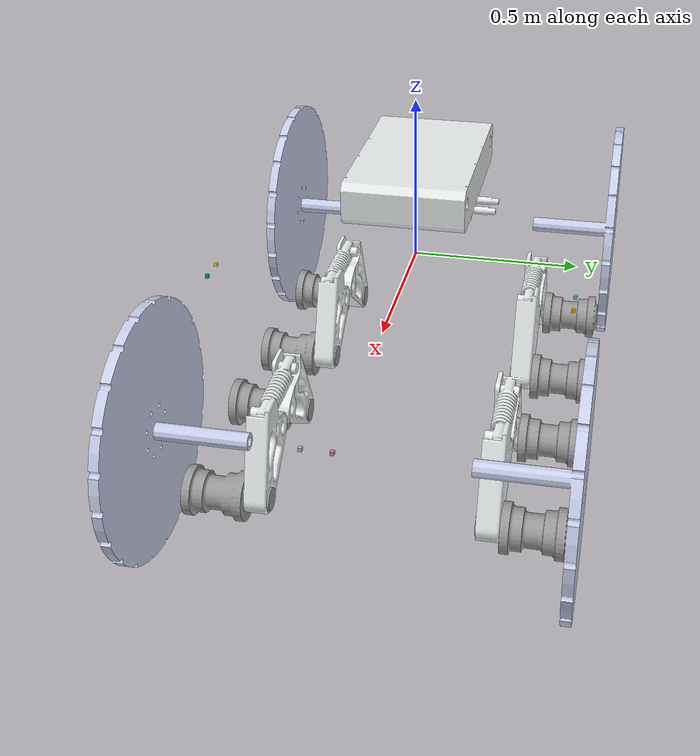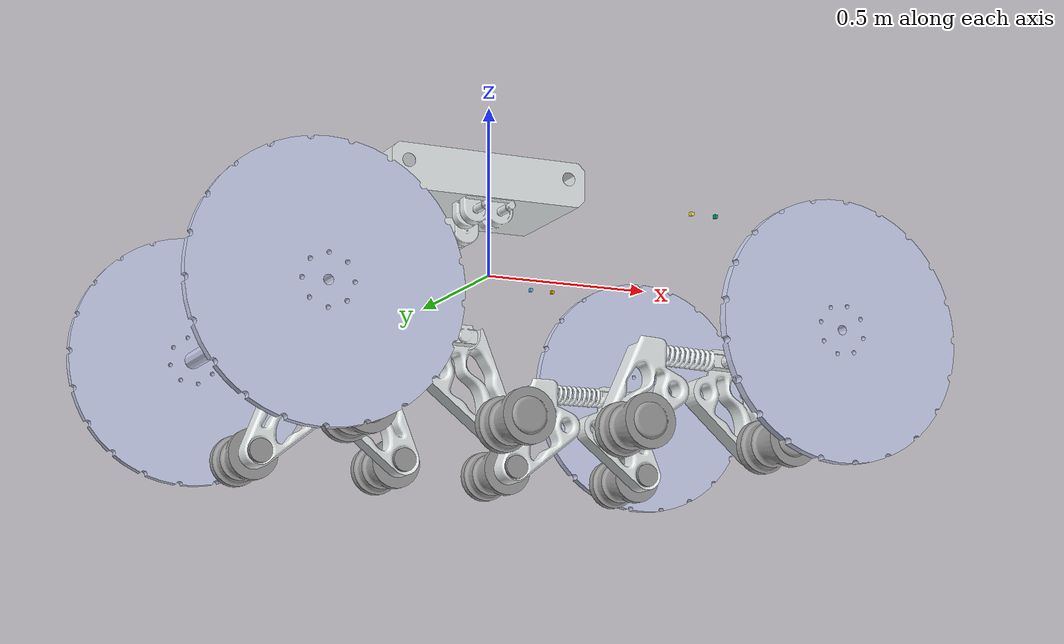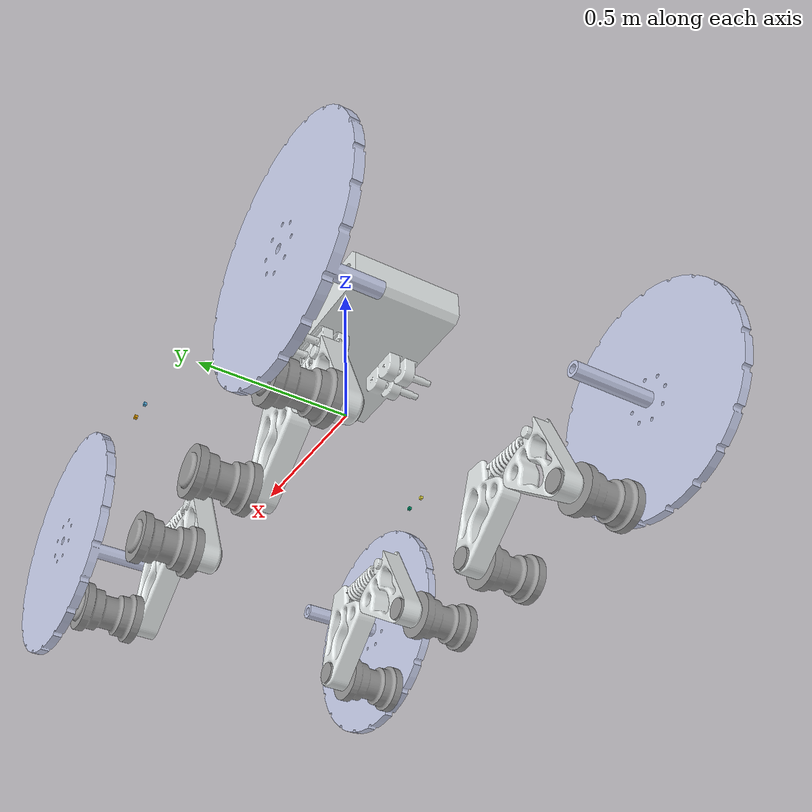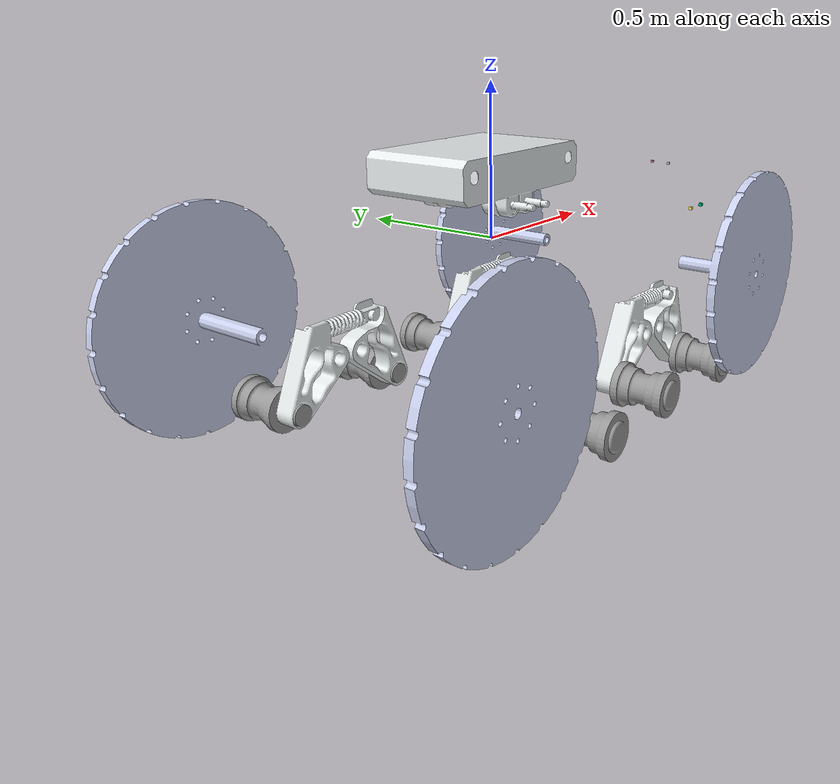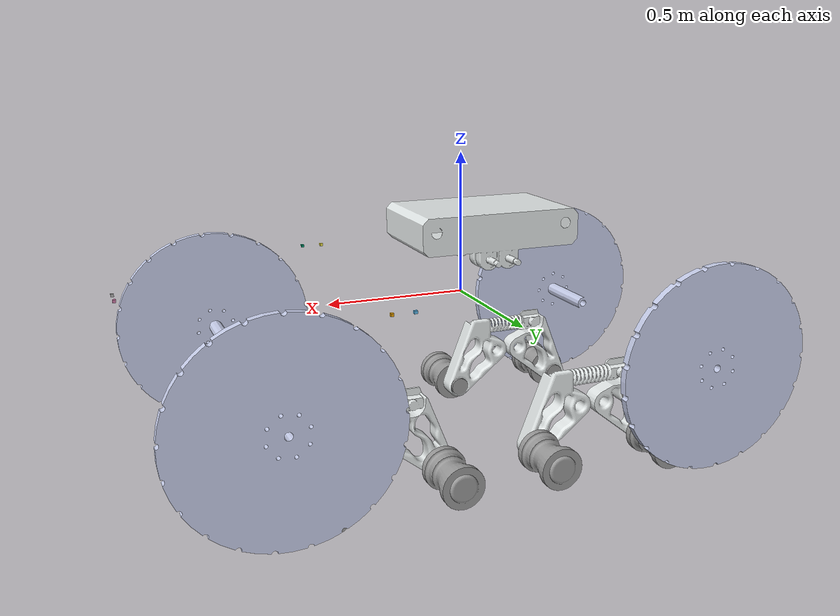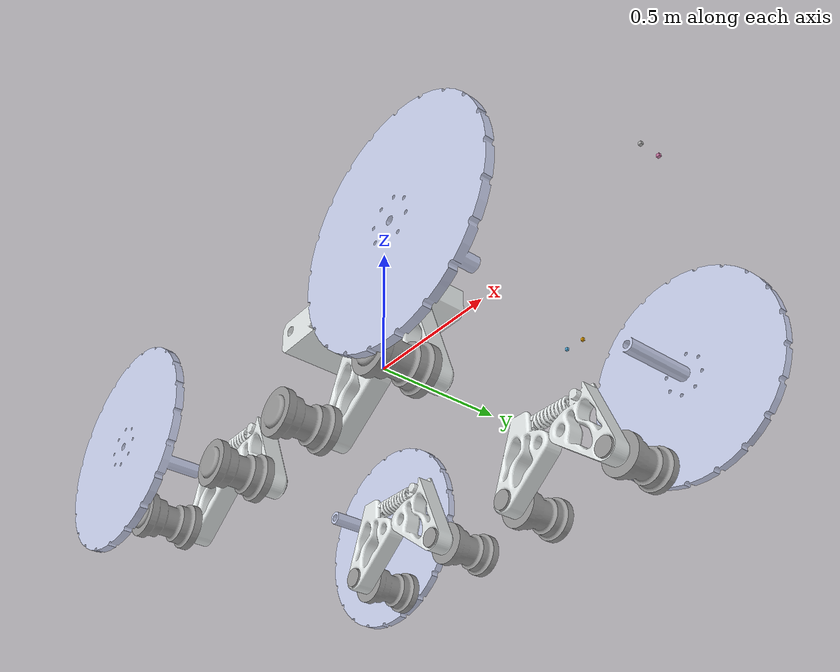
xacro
<?xml version="1.0"?>

<robot name="demeter" xmlns:xacro="http://ros.org/wiki/xacro">

  <!-- Arguments -->
  <xacro:arg name="sim" default="true" />
  <xacro:arg name="robot_name" default="demeter" />
  <xacro:arg name="namespace" default="" />
  <xacro:arg name="frame_prefix" default="" />

  <!-- Robot model -->
  <xacro:include filename="$(find demeter_description)/models/urdf/demeter_model.urdf.xacro" />

  <!-- Simulation hardware interface -->
  <xacro:if value="$(arg sim)">
    <xacro:include filename="$(find demeter_description)/models/urdf/demeter_sim_hardware_interface.urdf.xacro" />
  </xacro:if>

</robot>

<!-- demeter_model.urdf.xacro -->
<robot xmlns:xacro="http://www.ros.org/wiki/xacro">
  <xacro:property name="mesh_dir" value="$(find demeter_description)/models/meshes" />
  <link
    name="base_link">
    <inertial>
      <origin
        xyz="-0.146665450570513 -0.130801224430533 0.104522386184565"
        rpy="0 0 0" />
      <mass
        value="500.894708923615" />
      <inertia
        ixx="18.4023004638644"
        ixy="-0.00177025285701215"
        ixz="1.11260688454139"
        iyy="44.5321575820338"
        iyz="0.0635919234687216"
        izz="48.9707086072726" />
    </inertial>
    <visual>
      <origin
        xyz="0 0 0"
        rpy="0 0 0" />
      <geometry>
        <mesh
          filename="file://${mesh_dir}/base_link.STL" />
      </geometry>
      <material
        name="">
        <color
          rgba="0.901960784313726 0.92156862745098 0.92156862745098 1" />
      </material>
    </visual>
    <collision>
      <origin
        xyz="0 0 0.3"
        rpy="0 0 0" />
      <geometry>
        <box size="1.9 1.0 0.7"/> <!-- длина/ширина/высота корпуса -->
      </geometry>
    </collision>
  </link>

  <link name="imu_link"/>
  <link name="navsat_link"/>
  <link name="front_cams">
    <inertial>
      <mass value="500.894708923615" />
      <inertia ixx="1e-6" ixy="0" ixz="0" iyy="1e-6" iyz="0" izz="1e-6"/>
    </inertial>
  </link>
  <link name="left_cams">
    <inertial>
      <mass value="500.894708923615" />
      <inertia ixx="1e-6" ixy="0" ixz="0" iyy="1e-6" iyz="0" izz="1e-6"/>
    </inertial>
  </link>
  <link name="right_cams">
    <inertial>
      <mass value="500.894708923615" />
      <inertia ixx="1e-6" ixy="0" ixz="0" iyy="1e-6" iyz="0" izz="1e-6"/>
    </inertial>
  </link>
  <!-- Front cameras -->
  <link name="f_left_camera">
    <inertial>
      <mass value="500.894708923615" />
      <inertia ixx="1e-6" ixy="0" ixz="0" iyy="1e-6" iyz="0" izz="1e-6"/>
    </inertial>
    <visual>
      <geometry>
        <box size="0.01 0.01 0.01"/>
      </geometry>
    </visual>
  </link>
  <link name="f_right_camera">
    <inertial>
      <mass value="500.894708923615" />
      <inertia ixx="1e-6" ixy="0" ixz="0" iyy="1e-6" iyz="0" izz="1e-6"/>
    </inertial>
    <visual>
      <geometry>
        <box size="0.01 0.01 0.01"/>
      </geometry>
    </visual>
  </link>
  <!-- Left cameras -->
  <link name="l_right_camera">
    <inertial>
      <mass value="500.894708923615" />
      <inertia ixx="1e-6" ixy="0" ixz="0" iyy="1e-6" iyz="0" izz="1e-6"/>
    </inertial>
    <visual>
      <geometry>
        <box size="0.01 0.01 0.01"/>
      </geometry>
    </visual>
  </link>
  <link name="l_left_camera">
    <visual>
      <geometry>
        <box size="0.01 0.01 0.01"/>
      </geometry>
    </visual>
  </link>
  <!-- Right cameras -->
  <link name="r_left_camera">
    <inertial>
      <mass value="500.894708923615" />
      <inertia ixx="1e-6" ixy="0" ixz="0" iyy="1e-6" iyz="0" izz="1e-6"/>
    </inertial>
    <visual>
      <geometry>
        <box size="0.01 0.01 0.01"/>
      </geometry>
    </visual>
  </link>
  <link name="r_right_camera">
    <inertial>
      <mass value="500.894708923615" />
      <inertia ixx="1e-6" ixy="0" ixz="0" iyy="1e-6" iyz="0" izz="1e-6"/>
    </inertial>
    <visual>
      <geometry>
        <box size="0.01 0.01 0.01"/>
      </geometry>
    </visual>
  </link>
  <joint name="imu_joint" type="fixed">
    <origin xyz="0 0 0" rpy="0 0 0"/>
    <parent link="base_link"/>
    <child link="imu_link"/>
  </joint>

  <joint name="navsat_joint" type="fixed">
    <origin xyz="0 0 0.2" rpy="0 0 0"/>
    <parent link="base_link"/>
    <child link="navsat_link"/>
  </joint>
  <!-- Joints для позиционирования камер в Gazebo -->
  <joint name="base_to_front_cams" type="fixed">
    <parent link="base_link"/>
    <child link="front_cams"/>
    <origin xyz="1.2 0.0 0.1" rpy="0 0 0"/> <!-- центр между камерами -->
  </joint>
  <joint name="base_to_left_cams" type="fixed">
    <parent link="base_link"/>
    <child link="left_cams"/>
    <origin xyz="0.4125 0.52 0.1" rpy="0 0 1.5708"/> <!-- центр между камерами -->
  </joint>
  <joint name="base_to_right_cams" type="fixed">
    <parent link="base_link"/>
    <child link="right_cams"/>
    <origin xyz="0.4125 -0.52 0.1" rpy="0 0 -1.5708"/> <!-- центр между камерами -->
  </joint>

  <joint name="base_to_f_left_camera" type="fixed">
    <parent link="front_cams"/>
    <child link="f_left_camera"/>
    <origin xyz="0 0.0375 0" rpy="-1.5708 0 -1.5708"/>
  </joint>
  <joint name="base_to_f_right_camera" type="fixed">
    <parent link="front_cams"/>
    <child link="f_right_camera"/>
    <origin xyz="0 -0.0375 0" rpy="-1.5708 0 -1.5708"/>
  </joint>
  <joint name="base_to_l_left_camera" type="fixed">
    <parent link="left_cams"/>
    <child link="l_left_camera"/>
    <origin xyz="0 0.0375 0" rpy="-1.5708 0 -1.5708"/>
  </joint>
  <joint name="base_to_l_right_camera" type="fixed">
    <parent link="left_cams"/>
    <child link="l_right_camera"/>
    <origin xyz="0 -0.0375 0" rpy="-1.5708 0 -1.5708"/>
  </joint>
  <joint name="base_to_r_left_camera" type="fixed">
    <parent link="right_cams"/>
    <child link="r_left_camera"/>
    <origin xyz="0 0.0375 0" rpy="-1.5708 0 -1.5708"/>
  </joint>
  <joint name="base_to_r_right_camera" type="fixed">
    <parent link="right_cams"/>
    <child link="r_right_camera"/>
    <origin xyz="0 -0.0375 0" rpy="-1.5708 0 -1.5708"/>
  </joint>

  <link
    name="Link1">
    <inertial>
      <origin
        xyz="-0.000625241762713614 -0.0350031471656116 -0.153698690860985"
        rpy="0 0 0" />
      <mass
        value="50.3713170440083" />
      <inertia
        ixx="0.300649617343705"
        ixy="0.0012819508517115"
        ixz="-0.00185277975719995"
        iyy="0.508223841043124"
        iyz="-3.92492744232425E-05"
        izz="0.246871602311289" />
    </inertial>
    <visual>
      <origin
        xyz="0 0 0"
        rpy="0 0 0" />
      <geometry>
        <mesh
          filename="file://${mesh_dir}/Link1.STL" />
      </geometry>
      <material
        name="">
        <color
          rgba="0.901960784313726 0.92156862745098 0.92156862745098 1" />
      </material>
    </visual>
    <collision>
      <origin
        xyz="0 0 0"
        rpy="0 0 0" />
      <geometry>
        <mesh
          filename="file://${mesh_dir}/Link1.STL" />
      </geometry>
    </collision>
  </link>
  <joint
    name="Right_absorber"
    type="fixed">
    <origin
      xyz="0.0480168574191399 -0.305000000000022 -0.229644819222496"
      rpy="0 0 0" />
    <parent
      link="base_link" />
    <child
      link="Link1" />
    <axis
      xyz="0 0 0" />
  </joint>
  <link
    name="Link1.1">
    <inertial>
      <origin
        xyz="-8.8818E-16 -1.9429E-15 -0.018298"
        rpy="0 0 0" />
      <mass
        value="89.513" />
      <inertia
        ixx="3.0398"
        ixy="1.404E-15"
        ixz="4.5781E-16"
        iyy="3.0398"
        iyz="-4.9882E-16"
        izz="5.9277" />
    </inertial>
    <visual>
      <origin
        xyz="0 0 0"
        rpy="0 0 0" />
      <geometry>
        <mesh
          filename="file://${mesh_dir}/Link1.1.STL" />
      </geometry>
      <material
        name="">
        <color
          rgba="0.79216 0.81961 0.93333 1" />
      </material>
    </visual>
    <collision>
    <origin
      xyz="0 0 0"
      rpy="0 0 0" />
      <geometry>
        <cylinder length="0.026" radius="0.370"/>
      </geometry>
    </collision>
  </link>
  <joint
    name="Right_motor_zad"
    type="continuous">
    <origin
      xyz="-0.75 -0.294 0.026645"
      rpy="1.5708 0 0" />
    <parent
      link="Link1" />
    <child
      link="Link1.1" />
    <axis
      xyz="0 0 -1" />
    <mimic
      joint="Caretca_prav_zad_1"
      multiplier="1"
      offset="0" />
  </joint>
  <link
    name="Link1.2">
    <inertial>
      <origin
        xyz="9.2537E-13 -1.1654E-12 -0.11142"
        rpy="0 0 0" />
      <mass
        value="19.264" />
      <inertia
        ixx="0.11226"
        ixy="-1.7113E-19"
        ixz="2.949E-18"
        iyy="0.11226"
        iyz="-1.7687E-18"
        izz="0.038249" />
    </inertial>
    <visual>
      <origin
        xyz="0 0 0"
        rpy="0 0 0" />
      <geometry>
        <mesh
          filename="file://${mesh_dir}/Link1.2.STL" />
      </geometry>
      <material
        name="">
        <color
          rgba="0.6 0.6 0.6 1" />
      </material>
    </visual>
    <collision>
      <origin
        xyz="0 0 0"
        rpy="0 0 0" />
      <geometry>
        <cylinder length="0.191" radius="0.075"/>
      </geometry>
    </collision>
  </link>
  <joint
    name="Caretca_prav_zad_1"
    type="continuous">
    <origin
      xyz="-0.62 -0.261 -0.26836"
      rpy="1.5708 0 0" />
    <parent
      link="Link1" />
    <child
      link="Link1.2" />
    <axis
      xyz="0 0 -1" />
    <mimic
      joint="Caretca_prav_zad_2"
      multiplier="1"
      offset="0" />
  </joint>
  <link
    name="Link1.3">
    <inertial>
      <origin
        xyz="9.2529E-13 1.1651E-12 -0.11142"
        rpy="0 0 0" />
      <mass
        value="19.264" />
      <inertia
        ixx="0.11226"
        ixy="3.4338E-18"
        ixz="2.5554E-18"
        iyy="0.11226"
        iyz="-6.3405E-18"
        izz="0.038249" />
    </inertial>
    <visual>
      <origin
        xyz="0 0 0"
        rpy="0 0 0" />
      <geometry>
        <mesh
          filename="file://${mesh_dir}/Link1.3.STL" />
      </geometry>
      <material
        name="">
        <color
          rgba="0.6 0.6 0.6 1" />
      </material>
    </visual>
    <collision>
      <origin
        xyz="0 0 0"
        rpy="0 0 0" />
      <geometry>
        <cylinder length="0.191" radius="0.075"/>
      </geometry>
    </collision>
  </link>
  <joint
    name="Caretca_prav_zad_2"
    type="continuous">
    <origin
      xyz="-0.18 -0.261 -0.26836"
      rpy="1.5708 0 0" />
    <parent
      link="Link1" />
    <child
      link="Link1.3" />
    <axis
      xyz="0 0 -1" />
    <mimic
      joint="Caretca_prav_pered_1"
      multiplier="1"
      offset="0" />
  </joint>
  <link
    name="Link1.4">
    <inertial>
      <origin
        xyz="-2.4453E-13 3.4951E-13 -0.11142"
        rpy="0 0 0" />
      <mass
        value="19.264" />
      <inertia
        ixx="0.11226"
        ixy="-9.0592E-35"
        ixz="8.6602E-19"
        iyy="0.11226"
        iyz="-7.7691E-18"
        izz="0.038249" />
    </inertial>
    <visual>
      <origin
        xyz="0 0 0"
        rpy="0 0 0" />
      <geometry>
        <mesh
          filename="file://${mesh_dir}/Link1.4.STL" />
      </geometry>
      <material
        name="">
        <color
          rgba="0.6 0.6 0.6 1" />
      </material>
    </visual>
    <collision>
      <origin
        xyz="0 0 0"
        rpy="0 0 0" />
      <geometry>
        <cylinder length="0.191" radius="0.075"/>
      </geometry>
    </collision>
  </link>
  <joint
    name="Caretca_prav_pered_1"
    type="continuous">
    <origin
      xyz="0.17211 -0.261 -0.25777"
      rpy="1.5708 0 0" />
    <parent
      link="Link1" />
    <child
      link="Link1.4" />
    <axis
      xyz="0 0 -1" />
    <mimic
      joint="Caretca_prav_pered_2"
      multiplier="1"
      offset="0" />
  </joint>
  <link
    name="Link1.5">
    <inertial>
      <origin
        xyz="2.6312E-14 2.9463E-14 -0.11142"
        rpy="0 0 0" />
      <mass
        value="19.264" />
      <inertia
        ixx="0.11226"
        ixy="2.6059E-18"
        ixz="1.8622E-19"
        iyy="0.11226"
        iyz="-1.0021E-18"
        izz="0.038249" />
    </inertial>
    <visual>
      <origin
        xyz="0 0 0"
        rpy="0 0 0" />
      <geometry>
        <mesh
          filename="file://${mesh_dir}/Link1.5.STL" />
      </geometry>
      <material
        name="">
        <color
          rgba="0.6 0.6 0.6 1" />
      </material>
    </visual>
    <collision>
      <origin
        xyz="0 0 0"
        rpy="0 0 0" />
      <geometry>
        <cylinder length="0.191" radius="0.075"/>
      </geometry>
    </collision>
  </link>
  <joint
    name="Caretca_prav_pered_2"
    type="continuous">
    <origin
      xyz="0.61132 -0.261 -0.27861"
      rpy="1.5708 0 0" />
    <parent
      link="Link1" />
    <child
      link="Link1.5" />
    <axis
      xyz="0 0 -1" />
    <mimic
      joint="Right_motor_pered"
      multiplier="1"
      offset="0" />
  </joint>
  <link
    name="Link1.6">
    <inertial>
      <origin
        xyz="2.7756E-15 6.7724E-15 -0.018298"
        rpy="0 0 0" />
      <mass
        value="89.513" />
      <inertia
        ixx="3.0398"
        ixy="-2.7576E-16"
        ixz="1.2231E-14"
        iyy="3.0398"
        iyz="-3.2419E-16"
        izz="5.9277" />
    </inertial>
    <visual>
      <origin
        xyz="0 0 0"
        rpy="0 0 0" />
      <geometry>
        <mesh
          filename="file://${mesh_dir}/Link1.6.STL" />
      </geometry>
      <material
        name="">
        <color
          rgba="0.79216 0.81961 0.93333 1" />
      </material>
    </visual>
    <collision>
      <origin
        xyz="0 0 0"
        rpy="0 0 0" />
      <geometry>
        <cylinder length="0.026" radius="0.370"/>
      </geometry>
    </collision>
  </link>
  <joint
    name="Right_motor_pered"
    type="continuous">
    <origin
      xyz="0.75 -0.29399999999998 0.0266448192224933"
      rpy="1.57079632679489 0 0" />
    <parent
      link="Link1" />
    <child
      link="Link1.6" />
    <axis
      xyz="0 0 -1" />
  </joint>
  <link
    name="Link2">
    <inertial>
      <origin
        xyz="1.33947736036602E-08 0.0350748076716151 -0.153693701607068"
        rpy="0 0 0" />
      <mass
        value="50.3713313117347" />
      <inertia
        ixx="0.300716634163792"
        ixy="0.00128531344241592"
        ixz="3.68512180566246E-05"
        iyy="0.508220115739333"
        iyz="1.70676187386356E-08"
        izz="0.246800639065682" />
    </inertial>
    <visual>
      <origin
        xyz="0 0 0"
        rpy="0 0 0" />
      <geometry>
        <mesh
          filename="file://${mesh_dir}/Link2.STL" />
      </geometry>
      <material
        name="">
        <color
          rgba="0.901960784313726 0.92156862745098 0.92156862745098 1" />
      </material>
    </visual>
    <collision>
      <origin
        xyz="0 0 0"
        rpy="0 0 0" />
      <geometry>
        <mesh
          filename="file://${mesh_dir}/Link2.STL" />
      </geometry>
    </collision>
  </link>
  <joint
    name="Left_absorber"
    type="fixed">
    <origin
      xyz="0.0480168574191399 0.304999999999995 -0.229644819222496"
      rpy="0 0 0" />
    <parent
      link="base_link" />
    <child
      link="Link2" />
    <axis
      xyz="0 0 0" />
  </joint>
  <link
    name="Link2.1">
    <inertial>
      <origin
        xyz="0 -2.2204E-16 -0.018298"
        rpy="0 0 0" />
      <mass
        value="89.513" />
      <inertia
        ixx="3.0398"
        ixy="-4.3072E-15"
        ixz="-5.0839E-16"
        iyy="3.0398"
        iyz="7.7875E-16"
        izz="5.9277" />
    </inertial>
    <visual>
      <origin
        xyz="0 0 0"
        rpy="0 0 0" />
      <geometry>
        <mesh
          filename="file://${mesh_dir}/Link2.1.STL" />
      </geometry>
      <material
        name="">
        <color
          rgba="0.79216 0.81961 0.93333 1" />
      </material>
    </visual>
    <collision>
      <origin
        xyz="0 0 0"
        rpy="0 0 0" />
      <geometry>
        <cylinder length="0.026" radius="0.370"/>
      </geometry>
    </collision>
  </link>
  <joint
    name="Left_motor_zad"
    type="continuous">
    <origin
      xyz="-0.75 0.294 0.026645"
      rpy="-1.5708 0 0" />
    <parent
      link="Link2" />
    <child
      link="Link2.1" />
    <axis
      xyz="0 0 1" />
    <mimic
      joint="Caretca_left_zad_1"
      multiplier="1"
      offset="0" />
  </joint>
  <link
    name="Link2.2">
    <inertial>
      <origin
        xyz="-2.0761E-14 2.5285E-14 -0.11142"
        rpy="0 0 0" />
      <mass
        value="19.264" />
      <inertia
        ixx="0.11226"
        ixy="3.8634E-18"
        ixz="3.7671E-18"
        iyy="0.11226"
        iyz="5.4633E-18"
        izz="0.038249" />
    </inertial>
    <visual>
      <origin
        xyz="0 0 0"
        rpy="0 0 0" />
      <geometry>
        <mesh
          filename="file://${mesh_dir}/Link2.2.STL" />
      </geometry>
      <material
        name="">
        <color
          rgba="0.6 0.6 0.6 1" />
      </material>
    </visual>
    <collision>
      <origin
        xyz="0 0 0"
        rpy="0 0 0" />
      <geometry>
        <cylinder length="0.191" radius="0.075"/>
      </geometry>
    </collision>
  </link>
  <joint
    name="Caretca_left_zad_1"
    type="continuous">
    <origin
      xyz="-0.62 0.261 -0.26836"
      rpy="-1.5708 0 0" />
    <parent
      link="Link2" />
    <child
      link="Link2.2" />
    <axis
      xyz="0 0 1" />
    <mimic
      joint="Caretca_left_zad_2"
      multiplier="1"
      offset="0" />
  </joint>
  <link
    name="Link2.3">
    <inertial>
      <origin
        xyz="-2.09277040141842E-14 2.52853293858379E-14 -0.111417882550581"
        rpy="0 0 0" />
      <mass
        value="19.2638793677921" />
      <inertia
        ixx="0.112263770127318"
        ixy="-4.63639140326257E-35"
        ixz="8.66017093368957E-19"
        iyy="0.112263770127318"
        iyz="-4.61512882588658E-18"
        izz="0.0382494488771549" />
    </inertial>
    <visual>
      <origin
        xyz="0 0 0"
        rpy="0 0 0" />
      <geometry>
        <mesh
          filename="file://${mesh_dir}/Link2.3.STL" />
      </geometry>
      <material
        name="">
        <color
          rgba="0.6 0.6 0.6 1" />
      </material>
    </visual>
    <collision>
      <origin
        xyz="0 0 0"
        rpy="0 0 0" />
      <geometry>
        <cylinder length="0.191" radius="0.075"/>
      </geometry>
    </collision>
  </link>
  <joint
    name="Caretca_left_zad_2"
    type="continuous">
    <origin
      xyz="-0.18 0.261 -0.26836"
      rpy="-1.5708 0 0" />
    <parent
      link="Link2" />
    <child
      link="Link2.3" />
    <axis
      xyz="0 0 1" />
    <mimic
      joint="Caretca_left_pered_1"
      multiplier="1"
      offset="0" />
  </joint>
  <link
    name="Link2.4">
    <inertial>
      <origin
        xyz="-1.0214E-14 9.1316E-15 -0.11142"
        rpy="0 0 0" />
      <mass
        value="19.264" />
      <inertia
        ixx="0.11226"
        ixy="3.576E-20"
        ixz="3.6423E-18"
        iyy="0.11226"
        iyz="-1.3812E-18"
        izz="0.038249" />
    </inertial>
    <visual>
      <origin
        xyz="0 0 0"
        rpy="0 0 0" />
      <geometry>
        <mesh
          filename="file://${mesh_dir}/Link2.4.STL" />
      </geometry>
      <material
        name="">
        <color
          rgba="0.6 0.6 0.6 1" />
      </material>
    </visual>
    <collision>
      <origin
        xyz="0 0 0"
        rpy="0 0 0" />
      <geometry>
        <cylinder length="0.191" radius="0.075"/>
      </geometry>
    </collision>
  </link>
  <joint
    name="Caretca_left_pered_1"
    type="continuous">
    <origin
      xyz="0.18 0.261 -0.26836"
      rpy="-1.5708 0 0" />
    <parent
      link="Link2" />
    <child
      link="Link2.4" />
    <axis
      xyz="0 0 1" />
    <mimic
      joint="Caretca_left_pered_2"
      multiplier="1"
      offset="0" />
  </joint>
  <link
    name="Link2.5">
    <inertial>
      <origin
        xyz="-1.2434E-14 -1.8485E-14 -0.11142"
        rpy="0 0 0" />
      <mass
        value="19.264" />
      <inertia
        ixx="0.11226"
        ixy="8.1584E-19"
        ixz="9.8819E-19"
        iyy="0.11226"
        iyz="3.4439E-18"
        izz="0.038249" />
    </inertial>
    <visual>
      <origin
        xyz="0 0 0"
        rpy="0 0 0" />
      <geometry>
        <mesh
          filename="file://${mesh_dir}/Link2.5.STL" />
      </geometry>
      <material
        name="">
        <color
          rgba="0.6 0.6 0.6 1" />
      </material>
    </visual>
    <collision>
      <origin
        xyz="0 0 0"
        rpy="0 0 0" />
      <geometry>
        <cylinder length="0.191" radius="0.075"/>
      </geometry>
    </collision>
  </link>
  <joint
    name="Caretca_left_pered_2"
    type="continuous">
    <origin
      xyz="0.62 0.261 -0.26836"
      rpy="-1.5708 0 0" />
    <parent
      link="Link2" />
    <child
      link="Link2.5" />
    <axis
      xyz="0 0 1" />
    <mimic
      joint="Left_motor_pered"
      multiplier="1"
      offset="0" />
  </joint>
  <link
    name="Link2.6">
    <inertial>
      <origin
        xyz="-6.10622663543836E-15 -1.17683640610267E-14 -0.01829777007936"
        rpy="0 0 0" />
      <mass
        value="89.5129393466618" />
      <inertia
        ixx="3.03984947360915"
        ixy="-1.25243074991317E-15"
        ixz="5.00327111890607E-16"
        iyy="3.03984947360915"
        iyz="5.16740221060823E-16"
        izz="5.92768576051744" />
    </inertial>
    <visual>
      <origin
        xyz="0 0 0"
        rpy="0 0 0" />
      <geometry>
        <mesh
          filename="file://${mesh_dir}/Link2.6.STL" />
      </geometry>
      <material
        name="">
        <color
          rgba="0.792156862745098 0.819607843137255 0.933333333333333 1" />
      </material>
    </visual>
    <collision>
      <origin
        xyz="0 0 0"
        rpy="0 0 0" />
      <geometry>
        <cylinder length="0.026" radius="0.370"/>
      </geometry>
    </collision>
  </link>
  <joint
    name="Left_motor_pered"
    type="continuous">
    <origin
      xyz="0.750000000000002 0.294 0.026644819222494"
      rpy="-1.5707963267949 0 0" />
    <parent
      link="Link2" />
    <child
      link="Link2.6" />
    <axis
      xyz="0 0 1" />
  </joint>
</robot>
